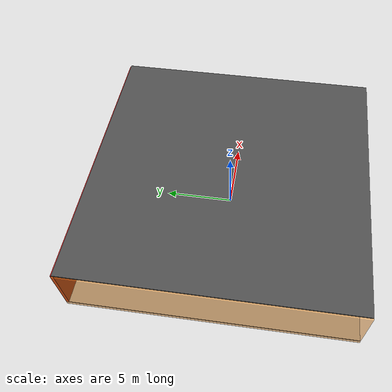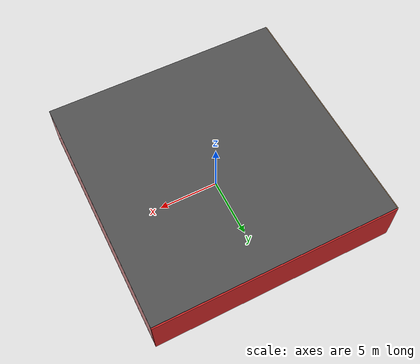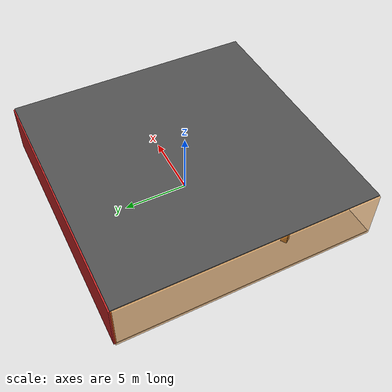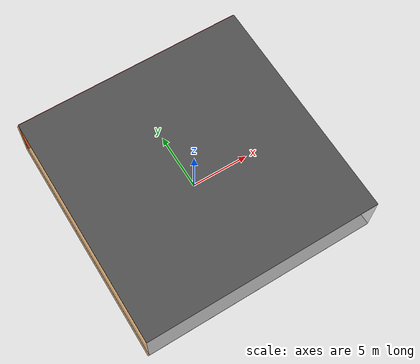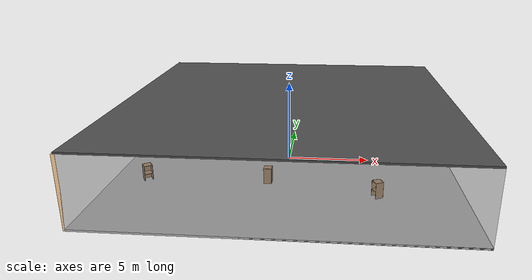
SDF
<sdf version="1.4">
 <world name="default">
  <physics type="ode">
   <max_step_size>0.001</max_step_size>
   <real_time_factor>1</real_time_factor>
   <real_time_update_rate>1000</real_time_update_rate>
   <gravity>0 0 -9.8</gravity>
  </physics>
  <scene><ambient>0.4 0.4 0.4 1</ambient><background>0.7 0.7 0.7 1</background><shadows>1</shadows></scene>
  <model name="Surrounding">
   <static>1</static>
   <link name="Ceiling">
    <collision name="Ceiling_Collision"><geometry><box><size>20 20 0.1</size></box></geometry></collision>
    <visual name="Ceiling_Visual">
     <geometry><box><size>20 20 0.1</size></box></geometry>
     <material>
      <script><uri>file://media/materials/scripts/gazebo.material</uri><name>Gazebo/Road</name></script>
     </material>
    </visual>
    <pose>0 0 4.05 0 0 0</pose>
   </link>
   <link name="Wall_South">
    <collision name="Wall_South_Collision">
     <geometry><box><size>20 0 4</size></box></geometry>
     <pose>0 0 2 0 -0 0</pose>
    </collision>
    <visual name="Wall_South_Visual">
     <pose>0 0 2 0 -0 0</pose>
     <geometry><box><size>20 0 4</size></box></geometry>
     <material>
      <script><uri>file://media/materials/scripts/gazebo.material</uri><name>Gazebo/GreyTransparent</name></script>
     </material>
    </visual>
    <velocity_decay><linear>0</linear><angular>0</angular></velocity_decay>
    <pose>0 -10 0 0 -0 0</pose>
   </link>
   <link name="Wall_East">
    <collision name="Wall_21_Collision">
     <geometry><box><size>20 0 4</size></box></geometry>
     <pose>0 0 2 0 -0 0</pose>
    </collision>
    <visual name="Wall_21_Visual">
     <pose>0 0 2 0 -0 0</pose>
     <geometry><box><size>20 0 4</size></box></geometry>
     <material>
      <script><uri>file://media/materials/scripts/gazebo.material</uri><name>Gazebo/RedTransparent</name></script>
     </material>
    </visual>
    <velocity_decay><linear>0</linear><angular>0</angular></velocity_decay>
    <pose>10 0 0 0 -0 1.5708</pose>
   </link>
   <link name="Wall_North">
    <collision name="Wall_22_Collision">
     <geometry><box><size>20 0.2 4</size></box></geometry>
     <pose>0 0 2 0 -0 0</pose>
    </collision>
    <visual name="Wall_22_Visual">
     <pose>0 0 2 0 -0 0</pose>
     <geometry><box><size>20 0.2 4</size></box></geometry>
     <material>
      <script><uri>file://media/materials/scripts/gazebo.material</uri><name>Gazebo/RedGlow</name></script>
     </material>
    </visual>
    <velocity_decay><linear>0</linear><angular>0</angular></velocity_decay>
    <pose>0 10 0 0 -0 0</pose>
   </link>
   <link name="Wall_West">
    <collision name="Wall_23_Collision">
     <geometry><box><size>20 0.2 4</size></box></geometry>
     <pose>0 0 2 0 -0 0</pose>
    </collision>
    <visual name="Wall_23_Visual">
     <pose>0 0 2 0 -0 0</pose>
     <geometry><box><size>20 0.2 4</size></box></geometry>
     <material>
      <script>
       <uri>file://media/materials/scripts/gazebo.material</uri>
       <name>Gazebo/OrangeTransparent</name>
      </script>
     </material>
    </visual>
    <velocity_decay><linear>0</linear><angular>0</angular></velocity_decay>
    <pose>-10 0 0 0 0 -1.5708</pose>
   </link>
   <link name="Ground_link">
    <collision name="collision">
     <pose>0 0 .05 0 -0 0</pose>
     <geometry><box><size>20 20 0.1</size></box></geometry>
    </collision>
    <visual name="visual">
     <pose>0 0 .05 0 -0 0</pose>
     <geometry><box><size>20 20 0.1</size></box></geometry>
     <material>
      <script><uri>file://media/materials/scripts/gazebo.material</uri><name>Gazebo/Pioneer2Body</name></script>
     </material>
    </visual>
   </link>
   <static>1</static>
  </model>
  <spherical_coordinates>
   <surface_model>EARTH_WGS84</surface_model>
   <latitude_deg>0</latitude_deg>
   <longitude_deg>0</longitude_deg>
   <elevation>0</elevation>
   <heading_deg>0</heading_deg>
  </spherical_coordinates>
  <light name="lightball_0" type="diffuse">
   <diffuse>0.8 0.8 0.8 1</diffuse>
   <specular>0.2 0.2 0.2 1</specular>
   <attenuation>
    <range>100</range>
    <constant>0.7</constant>
    <linear>0.01</linear>
    <quadratic>0.001</quadratic>
   </attenuation>
   <direction>-0.5 0.1 -0.9</direction>
   <pose>7.72473462344 9.54095549864 3.26454378948 0 0 0</pose>
  </light>
  <light name="lightball_1" type="diffuse">
   <diffuse>0.8 0.8 0.8 1</diffuse>
   <specular>0.2 0.2 0.2 1</specular>
   <attenuation>
    <range>100</range>
    <constant>0.7</constant>
    <linear>0.01</linear>
    <quadratic>0.001</quadratic>
   </attenuation>
   <direction>-0.5 0.1 -0.9</direction>
   <pose>9.59729211503 9.57750205888 3.65766270318 0 0 0</pose>
  </light>
  <light name="lightball_2" type="diffuse">
   <diffuse>0.8 0.8 0.8 1</diffuse>
   <specular>0.2 0.2 0.2 1</specular>
   <attenuation>
    <range>100</range>
    <constant>0.7</constant>
    <linear>0.01</linear>
    <quadratic>0.001</quadratic>
   </attenuation>
   <direction>-0.5 0.1 -0.9</direction>
   <pose>-2.99284815502 -3.19258454423 3.46374632616 0 0 0</pose>
  </light>
  <light name="lightball_3" type="diffuse">
   <diffuse>0.8 0.8 0.8 1</diffuse>
   <specular>0.2 0.2 0.2 1</specular>
   <attenuation>
    <range>100</range>
    <constant>0.7</constant>
    <linear>0.01</linear>
    <quadratic>0.001</quadratic>
   </attenuation>
   <direction>-0.5 0.1 -0.9</direction>
   <pose>-6.10427725979 8.42489678467 0.513901275854 0 0 0</pose>
  </light>
  <light name="lightball_4" type="diffuse">
   <diffuse>0.8 0.8 0.8 1</diffuse>
   <specular>0.2 0.2 0.2 1</specular>
   <attenuation>
    <range>100</range>
    <constant>0.7</constant>
    <linear>0.01</linear>
    <quadratic>0.001</quadratic>
   </attenuation>
   <direction>-0.5 0.1 -0.9</direction>
   <pose>8.46152369463 1.02353449124 1.68948237875 0 0 0</pose>
  </light>
  <light name="lightball_5" type="diffuse">
   <diffuse>0.8 0.8 0.8 1</diffuse>
   <specular>0.2 0.2 0.2 1</specular>
   <attenuation>
    <range>100</range>
    <constant>0.7</constant>
    <linear>0.01</linear>
    <quadratic>0.001</quadratic>
   </attenuation>
   <direction>-0.5 0.1 -0.9</direction>
   <pose>-8.45232171876 0.655776575359 3.42205084502 0 0 0</pose>
  </light>
  <light name="lightball_6" type="diffuse">
   <diffuse>0.8 0.8 0.8 1</diffuse>
   <specular>0.2 0.2 0.2 1</specular>
   <attenuation>
    <range>100</range>
    <constant>0.7</constant>
    <linear>0.01</linear>
    <quadratic>0.001</quadratic>
   </attenuation>
   <direction>-0.5 0.1 -0.9</direction>
   <pose>-3.08469938549 -1.75097054883 0.88004823047 0 0 0</pose>
  </light>
  <light name="lightball_7" type="diffuse">
   <diffuse>0.8 0.8 0.8 1</diffuse>
   <specular>0.2 0.2 0.2 1</specular>
   <attenuation>
    <range>100</range>
    <constant>0.7</constant>
    <linear>0.01</linear>
    <quadratic>0.001</quadratic>
   </attenuation>
   <direction>-0.5 0.1 -0.9</direction>
   <pose>0.804702727621 -8.91957641686 1.2403877924 0 0 0</pose>
  </light>
  <light name="lightball_8" type="diffuse">
   <diffuse>0.8 0.8 0.8 1</diffuse>
   <specular>0.2 0.2 0.2 1</specular>
   <attenuation>
    <range>100</range>
    <constant>0.7</constant>
    <linear>0.01</linear>
    <quadratic>0.001</quadratic>
   </attenuation>
   <direction>-0.5 0.1 -0.9</direction>
   <pose>-1.11211193121 -7.17626249369 2.41050193139 0 0 0</pose>
  </light>
  <light name="lightball_9" type="diffuse">
   <diffuse>0.8 0.8 0.8 1</diffuse>
   <specular>0.2 0.2 0.2 1</specular>
   <attenuation>
    <range>100</range>
    <constant>0.7</constant>
    <linear>0.01</linear>
    <quadratic>0.001</quadratic>
   </attenuation>
   <direction>-0.5 0.1 -0.9</direction>
   <pose>-5.69458774011 -5.78135268384 1.89717267118 0 0 0</pose>
  </light>
  <include><uri>model://cabinet</uri><pose>-7.97339041282 -4.10115975569 0 0 0 2.16559517521</pose></include>
  <include>
   <uri>model://textured_shapes</uri>
   <pose>-4.19185706275 7.52839132517 0 0 0 3.12767470745</pose>
  </include>
  <include>
   <uri>model://cabinet</uri>
   <pose>-0.935873678064 -3.91418115212 0 0 0 0.00595149259341</pose>
  </include>
  <include><uri>model://cabinet</uri><pose>5.19799089927 -5.29321313952 0 0 0 0.40519211495</pose></include>
  <include>
   <uri>model://construction_cone</uri>
   <pose>5.03960760101 1.077516342 0 0 0 2.65455308399</pose>
  </include>
  <include>
   <uri>model://construction_cone</uri>
   <pose>4.52824623334 7.26202330255 0 0 0 1.9363442655</pose>
  </include>
 </world>
</sdf>

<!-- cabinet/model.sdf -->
<sdf version="1.5">
  <model name="cabinet">
    <static>true</static>
    <link name="cabinet_bottom_plate">
      <inertial>
        <pose>0 0 -1 0 0 0</pose>
        <inertia>
          <ixx>2.050000</ixx>
          <ixy>0</ixy>
          <ixz>0</ixz>
          <iyy>2.050000</iyy>
          <iyz>0</iyz>
          <izz>2.050000</izz>
        </inertia>
        <mass>25.000000</mass>
      </inertial>
      <collision name="cabinet_bottom_plate_geom">
        <pose>0 0 0.010000 0 0 0</pose>
        <geometry>
          <box>
            <size>0.450000 0.450000 0.020000</size>
          </box>
        </geometry>
      </collision>
      <visual name="cabinet_bottom_plate_geom_visual">
        <pose>0 0 0.010000 0 0 0</pose>
        <geometry>
          <box>
            <size>0.450000 0.450000 0.020000</size>
          </box>
        </geometry>
        <material>
          <script>
            <uri>model://media/materials/scripts/gazebo.material</uri>
            <name>Gazebo/Wood</name>
          </script>
        </material>
      </visual>
      <collision name="cabinet_bottom_plate_geom_cabinet_back_plate">
        <pose>0.235000 0 0.510000 0 0 0</pose>
        <geometry>
          <box>
            <size>0.020000 0.450000 1.020000</size>
          </box>
        </geometry>
      </collision>
      <visual name="cabinet_bottom_plate_geom_cabinet_back_plate_visual">
        <pose>0.235000 0 0.510000 0 0 0</pose>
        <geometry>
          <box>
            <size>0.020000 0.450000 1.020000</size>
          </box>
        </geometry>
        <material>
          <script>
            <uri>model://media/materials/scripts/gazebo.material</uri>
            <name>Gazebo/Wood</name>
          </script>
        </material>
      </visual>
      <collision name="cabinet_bottom_plate_geom_cabinet_left_plate">
        <pose>0 0.235000 0.510000 0 0 0</pose>
        <geometry>
          <box>
            <size>0.450000 0.020000 1.020000</size>
          </box>
        </geometry>
      </collision>
      <visual name="cabinet_bottom_plate_geom_cabinet_left_plate_visual">
        <pose>0 0.235000 0.510000 0 0 0</pose>
        <geometry>
          <box>
            <size>0.450000 0.020000 1.020000</size>
          </box>
        </geometry>
        <material>
          <script>
            <uri>model://media/materials/scripts/gazebo.material</uri>
            <name>Gazebo/Wood</name>
          </script>
        </material>
      </visual>
      <collision name="cabinet_bottom_plate_geom_cabinet_middle_plate">
        <pose>0 0 0.510000 0 0 0</pose>
        <geometry>
          <box>
            <size>0.450000 0.450000 0.020000</size>
          </box>
        </geometry>
      </collision>
      <visual name="cabinet_bottom_plate_geom_cabinet_middle_plate_visual">
        <pose>0 0 0.510000 0 0 0</pose>
        <geometry>
          <box>
            <size>0.450000 0.450000 0.020000</size>
          </box>
        </geometry>
        <material>
          <script>
            <uri>model://media/materials/scripts/gazebo.material</uri>
            <name>Gazebo/Wood</name>
          </script>
        </material>
      </visual>
      <collision name="cabinet_bottom_plate_geom_cabinet_right_plate">
        <pose>0 -0.235000 0.510000 0 0 0</pose>
        <geometry>
          <box>
            <size>0.450000 0.020000 1.020000</size>
          </box>
        </geometry>
      </collision>
      <visual name="cabinet_bottom_plate_geom_cabinet_right_plate_visual">
        <pose>0 -0.235000 0.510000 0 0 0</pose>
        <geometry>
          <box>
            <size>0.450000 0.020000 1.020000</size>
          </box>
        </geometry>
        <material>
          <script>
            <uri>model://media/materials/scripts/gazebo.material</uri>
            <name>Gazebo/Wood</name>
          </script>
        </material>
      </visual>
      <collision name="cabinet_bottom_plate_geom_cabinet_top_plate">
        <pose>0 0 1.010000 0 0 0</pose>
        <geometry>
          <box>
            <size>0.450000 0.450000 0.020000</size>
          </box>
        </geometry>
      </collision>
      <visual name="cabinet_bottom_plate_geom_cabinet_top_plate_visual">
        <pose>0 0 1.010000 0 0 0</pose>
        <geometry>
          <box>
            <size>0.450000 0.450000 0.020000</size>
          </box>
        </geometry>
        <material>
          <script>
            <uri>model://media/materials/scripts/gazebo.material</uri>
            <name>Gazebo/Wood</name>
          </script>
        </material>
      </visual>
    </link>
  </model>
</sdf>

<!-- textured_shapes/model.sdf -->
<sdf version="1.6">
  <model name="textured_shapes">
    <pose>0 0 0.5 0 0 0</pose>
    <link name="box">
      <pose>0 -1.5 0 0 0 0</pose>
      <collision name="collision">
        <geometry>
          <box>
            <size>1 1 1</size>
          </box>
        </geometry>
      </collision>
      <visual name="visual">
        <geometry>
          <box>
            <size>1 1 1</size>
          </box>
        </geometry>
        <material>
          <script>
            <uri>model://../model_source/models/textured_shapes/materials/scripts</uri>
            <uri>model://../model_source/models/textured_shapes/materials/textures</uri>
            <name>TexturedShape/Squares</name>
          </script>
        </material>
      </visual>
    </link>
    <link name="sphere">
      <collision name="collision">
        <geometry>
          <sphere>
            <radius>0.5</radius>
          </sphere>
        </geometry>
      </collision>
      <visual name="visual">
        <geometry>
          <sphere>
            <radius>0.5</radius>
          </sphere>
        </geometry>
        <material>
          <script>
            <uri>model://../model_source/models/textured_shapes/materials/scripts</uri>
            <uri>model://../model_source/models/textured_shapes/materials/textures</uri>
            <name>TexturedShape/Squares</name>
          </script>
        </material>
      </visual>
    </link>
    <link name="cylinder">
      <pose>0 1.5 0 0 0 0</pose>
      <collision name="collision">
        <geometry>
          <cylinder>
            <radius>0.5</radius>
            <length>1</length>
          </cylinder>
        </geometry>
      </collision>
      <visual name="visual">
        <geometry>
          <cylinder>
            <radius>0.5</radius>
            <length>1</length>
          </cylinder>
        </geometry>
        <material>
          <script>
            <uri>model://../model_source/models/textured_shapes/materials/scripts</uri>
            <uri>model://../model_source/models/textured_shapes/materials/textures</uri>
            <name>TexturedShape/Squares</name>
          </script>
        </material>
      </visual>
    </link>
  </model>
</sdf>

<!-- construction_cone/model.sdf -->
<sdf version="1.5">
  <model name="Construction Cone">
    <link name="link">
      <collision name="collision">
        <geometry>
          <mesh>
            <scale>10 10 10</scale>
            <uri>file://isr-testbed/construction_cone/meshes/construction_cone.dae</uri>
          </mesh>
        </geometry>
      </collision>
      <visual name="visual">
        <geometry>
          <mesh>
            <scale>10 10 10</scale>
            <uri>file://isr-testbed/construction_cone/meshes/construction_cone.dae</uri>
          </mesh>
        </geometry>
      </visual>
    </link>
  </model>
</sdf>
